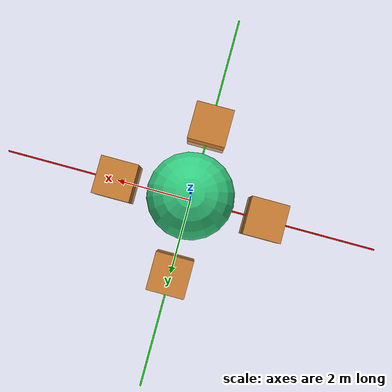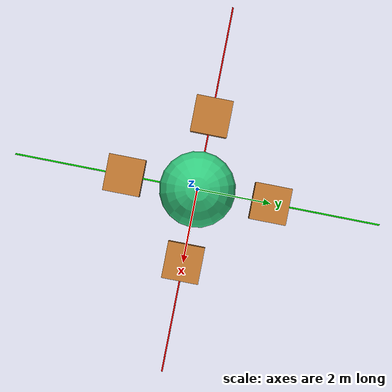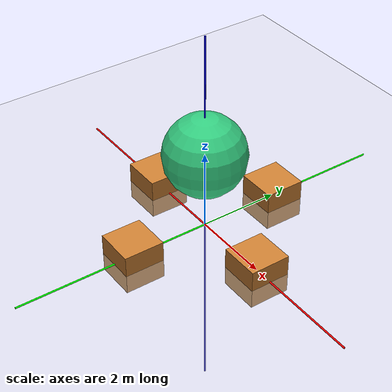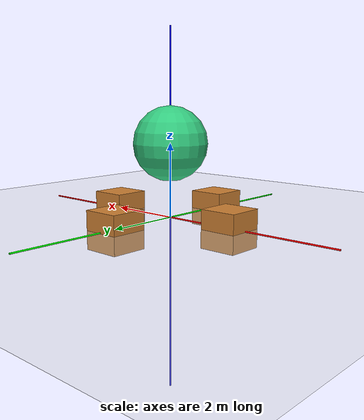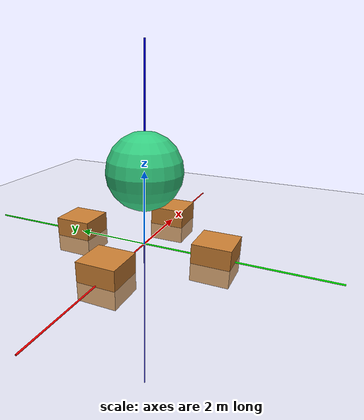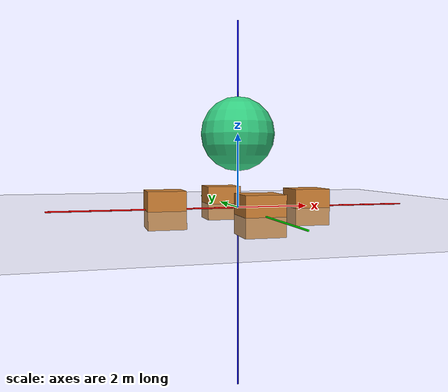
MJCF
<?xml version='1.0' encoding='utf-8'?>
<mujoco model="scene_export">
  <compiler angle="degree" coordinate="local" eulerseq="xyz"/>
  <option>
    <flag contact="disable" gravity="disable"/>
  </option>
  <asset>
    <texture name="grid" type="2d" builtin="checker" rgb1=".8 .8 .8" rgb2=".9 .9 .9" width="300" height="300"/>
    <material name="grid" texture="grid" texrepeat="8 8"/>
    <material name="default" rgba=".8 .8 .8 1"/>
  </asset>
  <worldbody>
    <light name="top" pos="0 0 2" dir="0 0 -1"/>
    <geom name="x_axis" type="cylinder" size="0.02 5" rgba="1 0 0 1" euler="0 90 0" pos="0 0 0"/>
    <geom name="y_axis" type="cylinder" size="0.02 5" rgba="0 1 0 1" euler="90 0 0" pos="0 0 0"/>
    <geom name="z_axis" type="cylinder" size="0.02 5" rgba="0 0 1 1" pos="0 0 0"/>
    <geom name="ground" type="plane" size="50 50 0.1" pos="0 0 0" material="grid"/>
    <body name="0_combined_group" pos="0.0 0.0 -2.0">
      <body name="0_combined_group_new_group_1" pos="0.0 0.0 2.0">
        <body name="0_combined_group_new_group_box_1" pos="2.0 0.0 0.0">
          <geom name="0_combined_group_new_group_box_1_geom" type="box" size="0.5 0.5 0.5" rgba="0.800000011920929 0.5 0.20000000298023224 1.0"/>
        </body>
        <body name="0_combined_group_new_group_box_2" pos="-2.0 0.0 0.0">
          <geom name="0_combined_group_new_group_box_2_geom" type="box" size="0.5 0.5 0.5" rgba="0.800000011920929 0.5 0.20000000298023224 1.0"/>
        </body>
        <body name="0_combined_group_new_group_box_3" pos="0.0 2.0 0.0">
          <geom name="0_combined_group_new_group_box_3_geom" type="box" size="0.5 0.5 0.5" rgba="0.800000011920929 0.5 0.20000000298023224 1.0"/>
        </body>
        <body name="0_combined_group_new_group_box_4" pos="0.0 -2.0 0.0">
          <geom name="0_combined_group_new_group_box_4_geom" type="box" size="0.5 0.5 0.5" rgba="0.800000011920929 0.5 0.20000000298023224 1.0"/>
        </body>
      </body>
      <body name="0_combined_group_new_group_2" pos="0.0 0.0 4.0">
        <body name="0_combined_group_new_group_sphere_1" pos="0.0 0.0 0.0">
          <geom name="0_combined_group_new_group_sphere_1_geom" type="sphere" size="1.0" rgba="0.20000000298023224 0.800000011920929 0.5 1.0"/>
        </body>
      </body>
    </body>
  </worldbody>
</mujoco>
